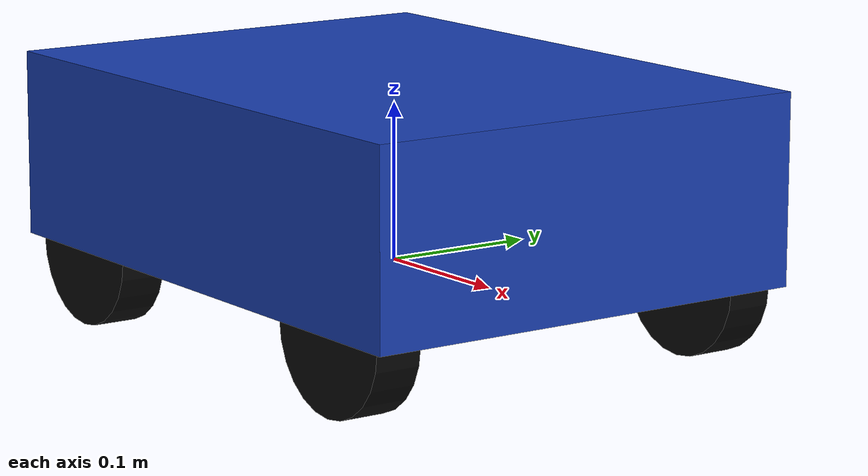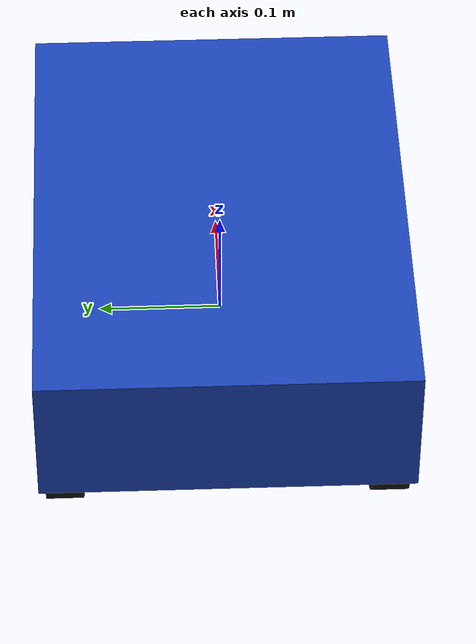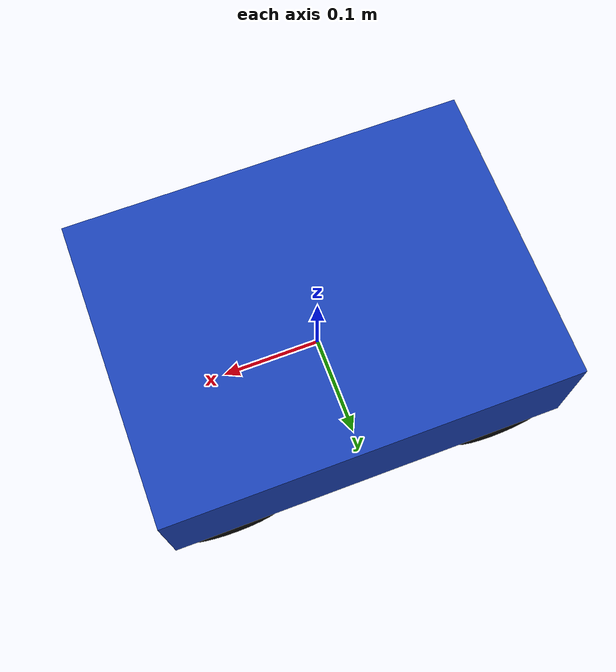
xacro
<?xml version="1.0"?>
<robot xmlns:xacro="http://www.ros.org/wiki/xacro" name="vehicle">
  <xacro:arg name="base_length" default="0.40"/>
  <xacro:arg name="base_width" default="0.30"/>
  <xacro:arg name="base_height" default="0.12"/>
  <xacro:arg name="wheel_radius" default="0.05"/>
  <xacro:arg name="wheel_width" default="0.03"/>
  <xacro:arg name="wheel_base" default="0.28"/>
  <xacro:arg name="track_width" default="0.26"/>
  <xacro:arg name="imu_x" default="0.0"/>
  <xacro:arg name="imu_y" default="0.0"/>
  <xacro:arg name="imu_z" default="0.05"/>
  <xacro:arg name="imu_roll" default="0.0"/>
  <xacro:arg name="imu_pitch" default="0.0"/>
  <xacro:arg name="imu_yaw" default="0.0"/>
  <xacro:arg name="sim" default="false"/>

  <xacro:property name="base_length" value="$(arg base_length)"/>
  <xacro:property name="base_width" value="$(arg base_width)"/>
  <xacro:property name="base_height" value="$(arg base_height)"/>
  <xacro:property name="wheel_radius" value="$(arg wheel_radius)"/>
  <xacro:property name="wheel_width" value="$(arg wheel_width)"/>
  <xacro:property name="wheel_base" value="$(arg wheel_base)"/>
  <xacro:property name="track_width" value="$(arg track_width)"/>

  <material name="body_blue">
    <color rgba="0.10 0.25 0.70 1.0"/>
  </material>
  <material name="wheel_black">
    <color rgba="0.04 0.04 0.04 1.0"/>
  </material>

  <link name="base_link">
    <inertial>
      <origin xyz="0 0 ${base_height / 2.0}" rpy="0 0 0"/>
      <mass value="2.0"/>
      <inertia
        ixx="${(2.0 / 12.0) * (base_width * base_width + base_height * base_height)}"
        ixy="0.0"
        ixz="0.0"
        iyy="${(2.0 / 12.0) * (base_length * base_length + base_height * base_height)}"
        iyz="0.0"
        izz="${(2.0 / 12.0) * (base_length * base_length + base_width * base_width)}"/>
    </inertial>
    <visual>
      <origin xyz="0 0 ${base_height / 2.0}" rpy="0 0 0"/>
      <geometry>
        <box size="${base_length} ${base_width} ${base_height}"/>
      </geometry>
      <material name="body_blue"/>
    </visual>
    <collision>
      <origin xyz="0 0 ${base_height / 2.0}" rpy="0 0 0"/>
      <geometry>
        <box size="${base_length} ${base_width} ${base_height}"/>
      </geometry>
    </collision>
  </link>

  <xacro:macro name="wheel_link" params="name">
    <link name="${name}">
      <inertial>
        <origin xyz="0 0 0" rpy="${pi / 2.0} 0 0"/>
        <mass value="0.1"/>
        <inertia
          ixx="${(0.1 / 12.0) * (3.0 * wheel_radius * wheel_radius + wheel_width * wheel_width)}"
          ixy="0.0"
          ixz="0.0"
          iyy="${0.1 * wheel_radius * wheel_radius / 2.0}"
          iyz="0.0"
          izz="${(0.1 / 12.0) * (3.0 * wheel_radius * wheel_radius + wheel_width * wheel_width)}"/>
      </inertial>
      <visual>
        <origin xyz="0 0 0" rpy="${pi / 2.0} 0 0"/>
        <geometry>
          <cylinder radius="${wheel_radius}" length="${wheel_width}"/>
        </geometry>
        <material name="wheel_black"/>
      </visual>
      <collision>
        <origin xyz="0 0 0" rpy="${pi / 2.0} 0 0"/>
        <geometry>
          <cylinder radius="${wheel_radius}" length="${wheel_width}"/>
        </geometry>
      </collision>
    </link>
    <xacro:if value="$(arg sim)">
      <gazebo reference="${name}">
        <mu1>1.0</mu1>
        <mu2>1.0</mu2>
      </gazebo>
    </xacro:if>
  </xacro:macro>

  <xacro:wheel_link name="front_left_wheel_link"/>
  <xacro:wheel_link name="rear_left_wheel_link"/>
  <xacro:wheel_link name="front_right_wheel_link"/>
  <xacro:wheel_link name="rear_right_wheel_link"/>

  <!-- These two joint names are owned by the ECU JointState contract. -->
  <joint name="left_wheel_joint" type="continuous">
    <parent link="base_link"/>
    <child link="front_left_wheel_link"/>
    <origin xyz="${wheel_base / 2.0} ${track_width / 2.0} 0" rpy="0 0 0"/>
    <axis xyz="0 1 0"/>
  </joint>
  <joint name="right_wheel_joint" type="continuous">
    <parent link="base_link"/>
    <child link="front_right_wheel_link"/>
    <origin xyz="${wheel_base / 2.0} ${-track_width / 2.0} 0" rpy="0 0 0"/>
    <axis xyz="0 1 0"/>
  </joint>

  <joint name="rear_left_wheel_joint" type="continuous">
    <parent link="base_link"/>
    <child link="rear_left_wheel_link"/>
    <origin xyz="${-wheel_base / 2.0} ${track_width / 2.0} 0" rpy="0 0 0"/>
    <axis xyz="0 1 0"/>
    <mimic joint="left_wheel_joint" multiplier="1.0" offset="0.0"/>
  </joint>
  <joint name="rear_right_wheel_joint" type="continuous">
    <parent link="base_link"/>
    <child link="rear_right_wheel_link"/>
    <origin xyz="${-wheel_base / 2.0} ${-track_width / 2.0} 0" rpy="0 0 0"/>
    <axis xyz="0 1 0"/>
    <mimic joint="right_wheel_joint" multiplier="1.0" offset="0.0"/>
  </joint>

  <link name="imu_link">
    <inertial>
      <mass value="0.01"/>
      <inertia ixx="0.000001" ixy="0.0" ixz="0.0"
               iyy="0.000001" iyz="0.0" izz="0.000001"/>
    </inertial>
  </link>
  <joint name="imu_joint" type="fixed">
    <parent link="base_link"/>
    <child link="imu_link"/>
    <origin
      xyz="$(arg imu_x) $(arg imu_y) $(arg imu_z)"
      rpy="$(arg imu_roll) $(arg imu_pitch) $(arg imu_yaw)"/>
  </joint>

  <xacro:if value="$(arg sim)">
    <gazebo>
      <plugin
        filename="gz-sim-diff-drive-system"
        name="gz::sim::systems::DiffDrive">
        <left_joint>left_wheel_joint</left_joint>
        <left_joint>rear_left_wheel_joint</left_joint>
        <right_joint>right_wheel_joint</right_joint>
        <right_joint>rear_right_wheel_joint</right_joint>
        <wheel_separation>${track_width}</wheel_separation>
        <wheel_radius>${wheel_radius}</wheel_radius>
        <topic>/sim/cmd_vel</topic>
        <odom_topic>/sim/odom</odom_topic>
        <frame_id>odom</frame_id>
        <child_frame_id>base_link</child_frame_id>
        <odom_publish_frequency>30</odom_publish_frequency>
        <publish_odom>true</publish_odom>
        <publish_tf>false</publish_tf>
      </plugin>
      <plugin
        filename="gz-sim-joint-state-publisher-system"
        name="gz::sim::systems::JointStatePublisher">
        <topic>/sim/joint_states</topic>
        <joint_name>left_wheel_joint</joint_name>
        <joint_name>rear_left_wheel_joint</joint_name>
        <joint_name>right_wheel_joint</joint_name>
        <joint_name>rear_right_wheel_joint</joint_name>
      </plugin>
    </gazebo>

    <gazebo reference="imu_link">
      <sensor name="imu_sensor" type="imu">
        <always_on>true</always_on>
        <update_rate>50</update_rate>
        <visualize>false</visualize>
        <topic>/sim/imu/data_raw</topic>
      </sensor>
    </gazebo>
  </xacro:if>
</robot>
